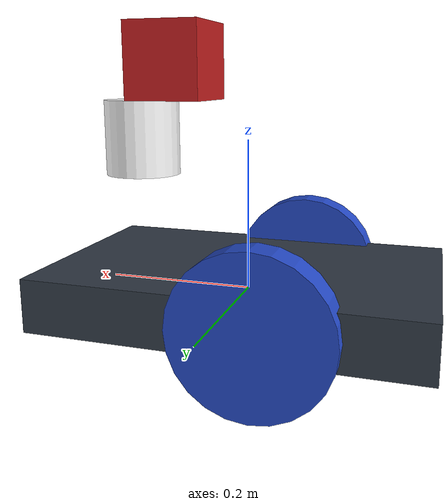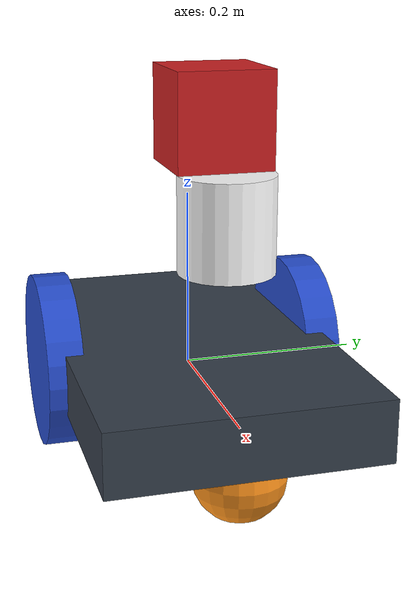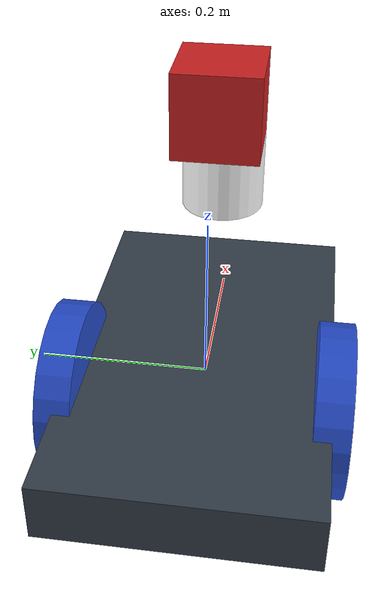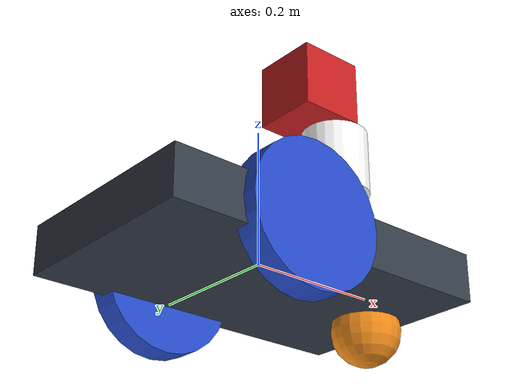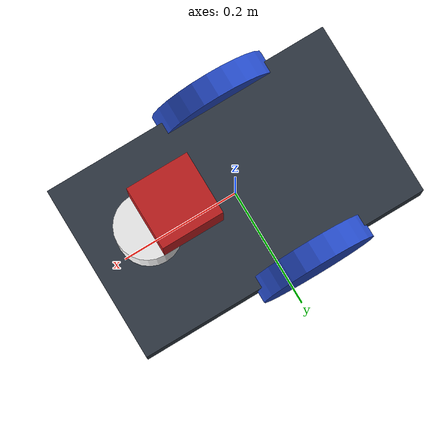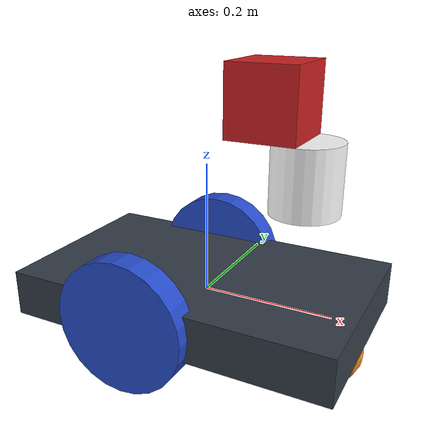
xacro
<?xml version="1.0" ?>
<robot name="m2wr" xmlns:xacro="http://www.ros.org/wiki/xacro">

  <xacro:include filename="$(find m2wr_description)/urdf/materials.xacro" />
  <xacro:include filename="$(find m2wr_description)/urdf/m2wr.gazebo" />
  <xacro:include filename="$(find m2wr_description)/urdf/macros.xacro" />

  <!-- Chasis definition -->
  <link name="link_chassis">
    <!-- pose and inertial -->
    <pose>0 0 0.1 0 0 0</pose>
    <inertial>
      <mass value="5"/>
      <origin rpy="0 0 0" xyz="0 0 0.1"/>
      <inertia ixx="0.0395416666667" ixy="0" ixz="0" iyy="0.106208333333" iyz="0" izz="0.106208333333"/>
    </inertial>
    <!-- body -->
    <collision name="collision_chassis">
      <geometry>
        <box size="0.5 0.3 0.07"/>
      </geometry>
    </collision>
    <visual>
      <origin rpy="0 0 0" xyz="0 0 0"/>
      <geometry>
        <box size="0.5 0.3 0.07"/>
      </geometry>
      <material name="blue"/>
    </visual>
    <!-- caster front -->
    <collision name="caster_front_collision">
      <origin rpy=" 0 0 0" xyz="0.35 0 -0.05"/>
      <geometry>
        <sphere radius="0.05"/>
      </geometry>
      <surface>
        <friction>
          <ode>
            <mu>0</mu>
            <mu2>0</mu2>
            <slip1>1.0</slip1>
            <slip2>1.0</slip2>
          </ode>
        </friction>
      </surface>
    </collision>
    <visual name="caster_front_visual">
      <origin rpy=" 0 0 0" xyz="0.2 0 -0.05"/>
      <geometry>
        <sphere radius="0.05"/>
      </geometry>
    </visual>
  </link>

  <!-- Sensor Link and Joint definition -->
  <link name="sensor_laser">
    <inertial>
        <origin xyz="0 0 0" rpy="0 0 0" />
        <mass value="1" />
        <xacro:cylinder_inertia mass="1" r="0.05" l="0.1" />
    </inertial>

    <visual>
        <origin xyz="0 0 0" rpy="0 0 0" />
        <geometry>
        <cylinder radius="0.05" length="0.1"/>
        </geometry>
        <material name="white" />
    </visual>

    <collision>
        <origin xyz="0 0 0" rpy="0 0 0"/>
        <geometry>
        <cylinder radius="0.05" length="0.1"/>
        </geometry>
    </collision>
    </link>

    <joint name="joint_sensor_laser" type="fixed">
    <origin xyz="0.15 0 0.2" rpy="0 0 0"/>
    <parent link="link_chassis"/>
    <child link="sensor_laser"/>
  </joint>

  <!-- Wheels definitions using Macros -->

  <xacro:link_wheel name="link_right_wheel" />
  <xacro:joint_wheel name="joint_right_wheel" child="link_right_wheel" origin_xyz="-0.05 0.15 0" />

  <xacro:link_wheel name="link_left_wheel" />
  <xacro:joint_wheel name="joint_left_wheel" child="link_left_wheel" origin_xyz="-0.05 -0.15 0" />

<!-- CAMERA DETAILS BELOW -->

  <joint name="camera_joint" type="fixed">
    <axis xyz="0 0 -1" />
    <origin xyz="0.1 0 0.3" rpy="0 0 0"/>
    <parent link="link_chassis"/>
    <child link="camera_link"/>
  </joint>

  <!-- Camera Link -->
  <link name="camera_link">
    <collision>
      <origin xyz="0 0 0" rpy="0 0 0"/>
      <geometry>
	<box size="0.1 0.1 0.1"/>
      </geometry>
    </collision>

    <visual>
      <origin xyz="0 0 0" rpy="0 0 0"/>
      <geometry>
  	<box size="0.1 0.1 0.1"/>
      </geometry>
      <material name="red"/>
    </visual>

    <inertial>
      <mass value="1e-5" />
      <origin xyz="0 0 0" rpy="0 0 0"/>
      <inertia ixx="1e-6" ixy="0" ixz="0" iyy="1e-6" iyz="0" izz="1e-6" />
    </inertial>
  </link>

  <gazebo reference="camera_link">
    <sensor type="camera" name="camera1">
      <update_rate>4</update_rate>
      <camera name="head">
        <horizontal_fov>1.3962634</horizontal_fov>
        <image>
          <width>800</width>
          <height>800</height>
          <format>R8G8B8</format>
        </image>
        <clip>
          <near>0.02</near>
          <far>300</far>
        </clip>
        <noise>
          <type>gaussian</type>
          <!-- Noise is sampled independently per pixel on each frame.
               That pixel's noise value is added to each of its color
               channels, which at that point lie in the range [0,1]. -->
          <mean>0.0</mean>
          <stddev>0.007</stddev>
        </noise>
      </camera>
      <plugin name="camera_controller" filename="libgazebo_ros_camera.so">
        <alwaysOn>true</alwaysOn>
        <updateRate>0.0</updateRate>
        <cameraName>camera</cameraName>
        <imageTopicName>image_raw</imageTopicName>
        <cameraInfoTopicName>camera_info</cameraInfoTopicName>
        <frameName>camera1</frameName>
        <hackBaseline>0.07</hackBaseline>
        <distortionK1>0.0</distortionK1>
        <distortionK2>0.0</distortionK2>
        <distortionK3>0.0</distortionK3>
        <distortionT1>0.0</distortionT1>
        <distortionT2>0.0</distortionT2>
      </plugin>
    </sensor>
  </gazebo>

</robot>

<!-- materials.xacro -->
<robot>
  <material name="black">
    <color rgba="0.0 0.0 0.0 1.0"/>
  </material>
  <material name="blue">
    <color rgba="0.203125 0.23828125 0.28515625 1.0"/>
  </material>
  <material name="green">
    <color rgba="0.0 0.8 0.0 1.0"/>
  </material>
  <material name="grey">
    <color rgba="0.2 0.2 0.2 1.0"/>
  </material>
  <material name="orange">
    <color rgba="1.0 0.423529411765 0.0392156862745 1.0"/>
  </material>
  <material name="brown">
    <color rgba="0.870588235294 0.811764705882 0.764705882353 1.0"/>
  </material>
  <material name="red">
    <color rgba="0.80078125 0.12890625 0.1328125 1.0"/>
  </material>
  <material name="white">
    <color rgba="1.0 1.0 1.0 1.0"/>
  </material>
</robot>

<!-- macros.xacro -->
<robot>
    <macro name="link_wheel" params="name">
        <link name="${name}">
            <inertial>
              <mass value="0.2"/>
              <origin rpy="0 1.5707 1.5707" xyz="0 0 0"/>
              <inertia ixx="0.000526666666667" ixy="0" ixz="0" iyy="0.000526666666667" iyz="0" izz="0.001"/>
            </inertial>
            <collision name="link_right_wheel_collision">
              <origin rpy="0 1.5707 1.5707" xyz="0 0 0"/>
              <geometry>
                <cylinder length="0.04" radius="0.1"/>
              </geometry>
            </collision>
            <visual name="${name}_visual">
              <origin rpy="0 1.5707 1.5707" xyz="0 0 0"/>
              <geometry>
                <cylinder length="0.04" radius="0.1"/>
              </geometry>
            </visual>
        </link>
    </macro>

    <macro name="joint_wheel" params="name child origin_xyz">
      <joint name="${name}" type="continuous">
        <origin rpy="0 0 0" xyz="${origin_xyz}"/>
        <child link="${child}"/>
        <parent link="link_chassis"/>
        <axis rpy="0 0 0" xyz="0 1 0"/>
        <limit effort="10000" velocity="1000"/>
        <joint_properties damping="1.0" friction="1.0"/>
      </joint>
    </macro>

    <macro name="cylinder_inertia" params="mass r l">
  	<inertia  ixx="${mass*(3*r*r+l*l)/12}" ixy = "0" ixz = "0"
	  	  iyy="${mass*(3*r*r+l*l)/12}" iyz = "0"
	   	 izz="${mass*(r*r)/2}" />
    </macro>
</robot>
